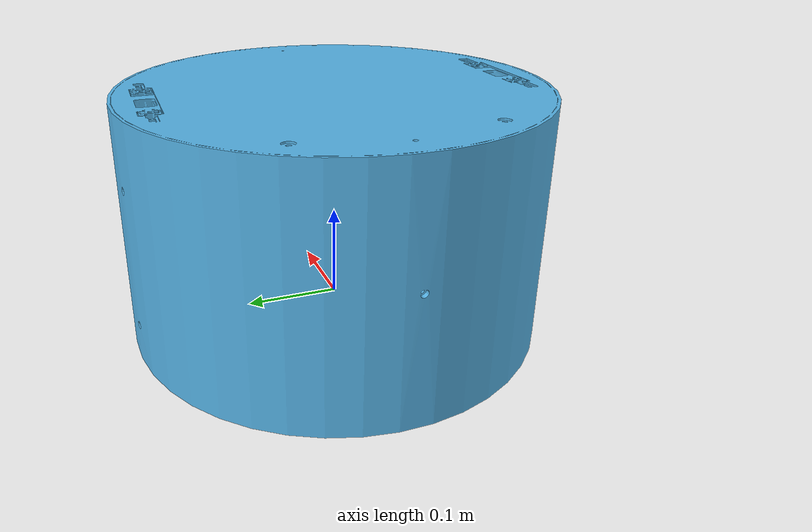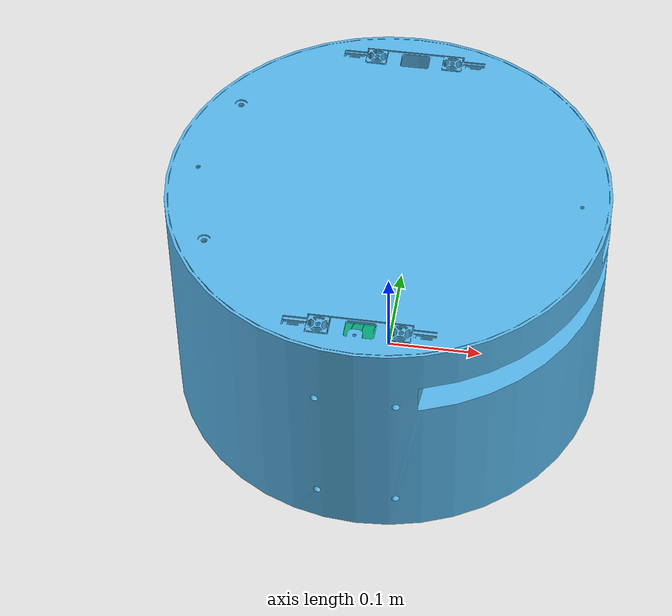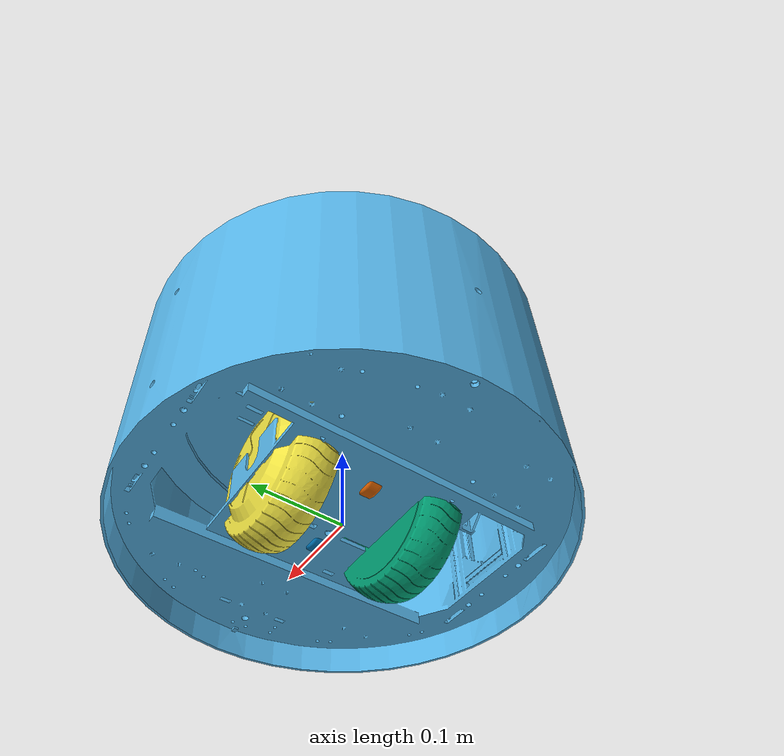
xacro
<?xml version="1.0"?>

<robot name="robot" xmlns:xacro="http://ros.org/wiki/xacro">

  <!-- Include Gazebo Parameters -->
  <xacro:include filename="$(find robot_description)/urdf/robot_gazebo.xacro" />
  <!-- Include ros2_control Plugins -->
  <xacro:include filename="$(find robot_description)/urdf/robot_ros2_control.xacro" />

  <!-- Chassi properties -->
  <xacro:property name="chassis_diameter" value="0.14"/>
  <xacro:property name="chassis_radius" value="${chassis_diameter/2}"/>
  <xacro:property name="chassis_thickness" value="0.008"/>
  <xacro:property name="chassis_distance_from_floor" value="0.033"/>
  <xacro:property name="chassis_mass" value="8.2573504E-01"/>
  <!-- Chassi moment of inertia -->
  <xacro:property name="chassi_Ixx" value="2.2124416e-02"/>
  <xacro:property name="chassi_Iyy" value="2.1193702e-02"/>
  <xacro:property name="chassi_Izz" value="2.0064271e-02"/>
  <xacro:property name="chassi_Ixy" value="-1.2294101e-04"/>
  <xacro:property name="chassi_Ixz" value="3.4938785e-04"/>
  <xacro:property name="chassi_Iyz" value="-5.0120904e-05"/>
  <!-- Wheel properties -->
  <xacro:property name="wheel_sphere_diameter" value="0.066"/>
  <xacro:property name="wheel_sphere_radius" value="${wheel_sphere_diameter/2}"/>
  <xacro:property name="wheel_translation" value="0.03"/>
  <xacro:property name="wheel_mass" value="0.0530086090966721"/>
  <!-- Wheel moment of inertia -->
  <xacro:property name="wheel_Ixx" value="1.8792911368909E-05"/>
  <xacro:property name="wheel_Iyy" value="3.11510738759073E-05"/>
  <xacro:property name="wheel_Izz" value="1.88266886146847E-05"/>
  <xacro:property name="wheel_Ixy" value="3.31256392204584E-10"/>
  <xacro:property name="wheel_Ixz" value="-1.14082001662767E-08"/>
  <xacro:property name="wheel_Iyz" value="-3.60499245082192E-10"/>

  <!-- Degrees to radians-->
  <xacro:property name="deg2rad" value="${pi/180}"/>
  <!-- Meters to centimeters -->
  <xacro:property name="cm2m" value="${1/100}"/>

  <link name="base_footprint"/>

  <!-- Chassi -->
  <link name="base_link">
    <visual>
      <origin xyz="0 0 0" rpy="0 0 0" />
      <geometry>
        <mesh filename="package://robot_description/meshes/base_link.STL" />
      </geometry>
    </visual>
    <collision>
      <origin xyz="0 0 0" rpy="0 0 0" />
      <geometry>
        <mesh filename="package://robot_description/meshes/base_link.STL" />
      </geometry>
    </collision>
    <inertial>
      <origin xyz="0 0 0.04" rpy="0.0 0.25 0.3" />
      <mass value="${chassis_mass}"/>
      <inertia ixx="${chassi_Ixx}" ixy="${chassi_Ixy}" ixz="${chassi_Ixz}"
               iyy="${chassi_Iyy}" iyz="${chassi_Iyz}"
               izz="${chassi_Izz}" />
    </inertial>
  </link>
  <joint name="base_joint" type="fixed">
    <parent link="base_footprint"/>
    <child link="base_link" />
    <origin xyz="0 0 ${chassis_distance_from_floor}" rpy="0 0 0"/>
  </joint>

  <!-- Right wheel-->
  <link name="wheel_right_link">
    <visual>
      <origin xyz="0 0 0" rpy="${90*deg2rad} 0 0" />
      <geometry>
        <mesh filename="package://robot_description/meshes/wheel_right_link.STL" />
      </geometry>
    </visual>
    <collision>
      <origin xyz="0 -${wheel_translation} 0" rpy="${90*deg2rad} 0 0" />
      <geometry>
        <sphere radius="${wheel_sphere_radius}"/>
      </geometry>
    </collision>
    <inertial>
      <origin xyz="0 -0.014 0" rpy="0 0 0" />
      <mass value="${wheel_mass}" />
      <inertia ixx="${wheel_Ixx}" ixy="${wheel_Ixy}" ixz="${wheel_Ixz}"
               iyy="${wheel_Iyy}" iyz="${wheel_Iyz}"
               izz="${wheel_Izz}" />
    </inertial>
  </link>
  <joint name="wheel_right_joint" type="continuous">
    <parent link="base_link" />
    <child link="wheel_right_link" />
    <origin xyz="0 -0.07 0" rpy="0 0 0" />
    <axis xyz="0 1 0" />
  </joint>

  <!-- Left Wheel-->
  <link name="wheel_left_link">
    <visual>
      <origin xyz="0 0 0" rpy="${-90*deg2rad} 0 0" />
      <geometry>
        <mesh filename="package://robot_description/meshes/wheel_left_link.STL" />
      </geometry>
    </visual>
    <collision>
      <origin xyz="0 ${wheel_translation} 0" rpy="${-90*deg2rad} 0 0" />
      <geometry>
        <sphere radius="${wheel_sphere_radius}"/>
      </geometry>
    </collision>
    <inertial>
      <origin xyz="0 0.014 0" rpy="0 0 0" />
      <mass value="${wheel_mass}" />
      <inertia ixx="${wheel_Ixx}" ixy="${wheel_Ixy}" ixz="${wheel_Ixz}"
                 iyy="${wheel_Iyy}" iyz="${wheel_Iyz}"
                 izz="${wheel_Izz}" />
    </inertial>
  </link>
  <joint name="wheel_left_joint" type="continuous">
    <parent link="base_link" />
    <child link="wheel_left_link" />
    <origin xyz="0 0.07 0" rpy="0 0 0" />
    <axis xyz="0 1 0" />
  </joint>

  <!-- Caster wheel front -->
  <link name="caster_front_link">
    <visual>
      <origin xyz="0 0 0" rpy="0 0 0" />
      <geometry>
        <mesh filename="package://robot_description/meshes/caster_front_link.STL" />
      </geometry>
    </visual>
    <collision>
      <origin xyz="0 0 0" rpy="0 0 0" />
      <geometry>
        <sphere radius="0.005"/>
      </geometry>
    </collision>
    <inertial>
      <origin xyz="3.89968128948481E-07 2.40073004698083E-07 0.00219173397061506" rpy="0 0 0" />
      <mass value="1.44379265037903E-06" />
      <inertia ixx="7.23075276010246E-11" ixy="-6.10956883467859E-16" ixz="2.22849693525031E-15"
               iyy="3.8713793085917E-11"  iyz="2.93909858781952E-15"
               izz="1.00967486676306E-10" />
    </inertial>
  </link>
  <joint name="caster_front_joint" type="fixed">
    <origin xyz="0.04755 0 -0.0275" rpy="0 0 0" />
    <parent link="base_link" />
    <child link="caster_front_link" />
    <axis xyz="0 0 0" />
  </joint>

  <!-- Caster wheel rear -->
  <link name="caster_rear_link">
    <visual>
      <origin xyz="0 0 0" rpy="0 0 0" />
      <geometry>
        <mesh filename="package://robot_description/meshes/caster_rear_link.STL" />
      </geometry>
    </visual>
    <collision>
      <origin xyz="0 0 0" rpy="0 0 0" />
      <geometry>
        <sphere radius="0.005"/>
      </geometry>
    </collision>
    <inertial>
      <origin xyz="3.8996812895542E-07 2.40073004698083E-07 0.00219173397061509" rpy="0 0 0" />
      <mass value="1.44379265037902E-06" />
      <inertia ixx="7.23075276010246E-11" ixy="-6.10956872363424E-16" ixz="2.22849693527207E-15"
               iyy="3.87137930859167E-11" iyz="2.939098587861E-15"
               izz="1.00967486676306E-10" />
    </inertial>
  </link>
  <joint name="caster_rear_joint" type="fixed">
    <origin xyz="-0.04755 0 -0.0275" rpy="0 0 0" />
    <parent link="base_link" />
    <child link="caster_rear_link" />
    <axis xyz="0 0 0" />
  </joint>

  <!-- IMU sensor -->
  <link name="imu_link">
    <visual>
      <origin xyz="0 0 0" rpy="0 0 0" />
      <geometry>
        <mesh filename="package://bumperbot_description/meshes/imu_link.STL" />
      </geometry>
      <material name="">
        <color rgba="0.792156862745098 0.819607843137255 0.933333333333333 1" />
      </material>
    </visual>
    <collision>
      <origin xyz="0 0 0" rpy="0 0 0" />
      <geometry>
        <mesh filename="package://bumperbot_description/meshes/imu_link.STL" />
      </geometry>
    </collision>
    <inertial>
      <origin xyz="-0.00552433659106688 0.000168210391520346 0.000514000497342681" rpy="0 0 0" />
      <mass value="0.000528415362211671" />
      <inertia ixx="1.46176048428261E-08" ixy="1.40015117949421E-10" ixz="-1.99633872937403E-12"
               iyy="8.59662482954888E-09" iyz="7.52375112767959E-12"
               izz="2.30279421279312E-08" />
    </inertial>
  </link>
  <joint name="imu_joint" type="fixed">
    <origin xyz="0 0 0.0698986241758014" rpy="0 0 0" />
    <parent link="base_link" />
    <child link="imu_link" />
    <axis xyz="0 0 0" />
  </joint>

  <!-- Ultrasonic sensor 1 -->
  <link name="ultrasonic_1_link">
    <visual>
      <origin xyz="0 0 0" rpy="0 0 0"/>
      <geometry>
        <box size="0.01 0.01 0.01"/>
      </geometry>
    </visual>
    <collision>
      <origin xyz="0 0 0" rpy="0 0 0"/>
      <geometry>
        <box size="0.01 0.01 0.01"/>
      </geometry>
    </collision>
    <inertia>
      <origin xyz="0 0 0" rpy="0 0 0" />
      <mass value="1E-5" />
      <inertia ixx="1E-6" ixy="0" ixz="0"
               iyy="1E-6" iyz="0"
               izz="1E-6" />
    </inertia>
  </link>
  <joint name="ultrasonic_1_joint" type="fixed">
    <origin xyz="0.04 0 0.001" rpy="0 0 0" />
    <axis xyz="1 0 0" />
    <parent link="base_link"/>
    <child link="ultrasonic_1_link"/>
  </joint>

  <!-- Ultrasonic sensor 2 -->
  <link name="ultrasonic_2_link">
    <visual>
      <origin xyz="0 0 0" rpy="0 0 0"/>
      <geometry>
        <box size="0.01 0.01 0.01"/>
      </geometry>
    </visual>
    <collision>
      <origin xyz="0 0 0" rpy="0 0 0"/>
      <geometry>
        <box size="0.01 0.01 0.01"/>
      </geometry>
    </collision>
    <inertia>
      <origin xyz="0 0 0" rpy="0 0 0" />
      <mass value="1E-5" />
      <inertia ixx="1E-6" ixy="0" ixz="0"
               iyy="1E-6" iyz="0"
               izz="1E-6" />
    </inertia>
  </link>
  <joint name="ultrasonic_2_joint" type="fixed">
    <origin xyz="0.04 0.04 0.001" rpy="0 0 ${30*deg2rad}" />
    <axis xyz="1 0 0" />
    <parent link="base_link"/>
    <child link="ultrasonic_2_link"/>
  </joint>

  <!-- Ultrasonic sensor 3 -->
  <link name="ultrasonic_3_link">
    <visual>
      <origin xyz="0 0 0" rpy="0 0 0"/>
      <geometry>
        <box size="0.01 0.01 0.01"/>
      </geometry>
    </visual>
    <collision>
      <origin xyz="0 0 0" rpy="0 0 0"/>
      <geometry>
        <box size="0.01 0.01 0.01"/>
      </geometry>
    </collision>
    <inertia>
      <origin xyz="0 0 0" rpy="0 0 0" />
      <mass value="1E-5" />
      <inertia ixx="1E-6" ixy="0" ixz="0"
               iyy="1E-6" iyz="0"
               izz="1E-6" />
    </inertia>
  </link>
  <joint name="ultrasonic_3_joint" type="fixed">
    <origin xyz="0.04 -0.04 0.001" rpy="0 0 ${-30*deg2rad}" />
    <axis xyz="1 0 0" />
    <parent link="base_link"/>
    <child link="ultrasonic_3_link"/>
  </joint>

</robot>
